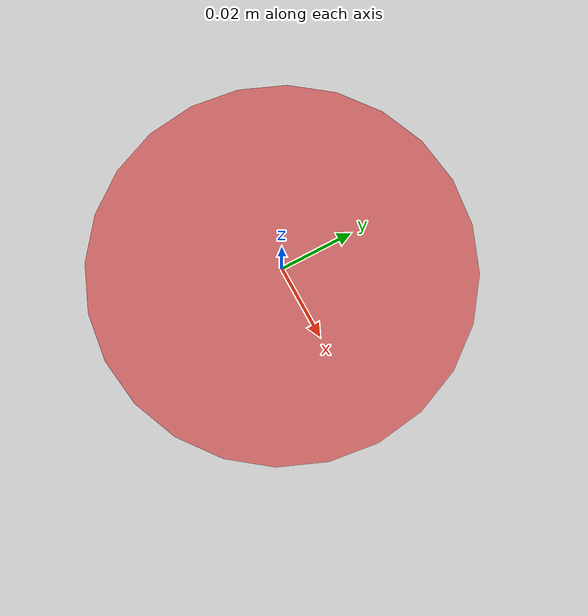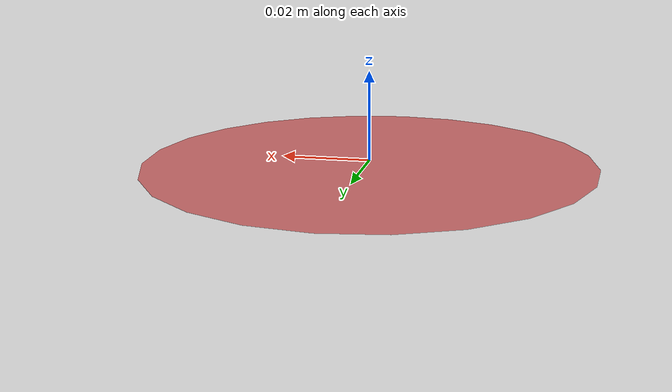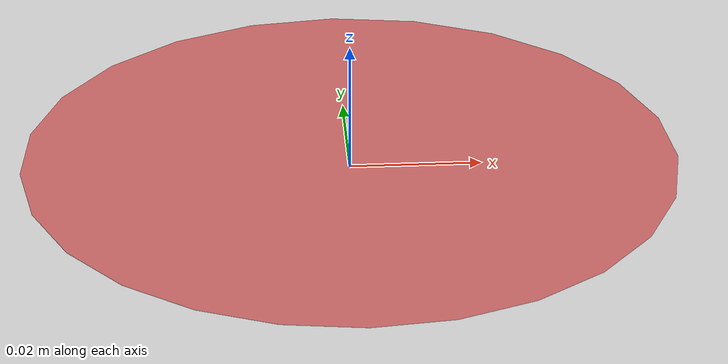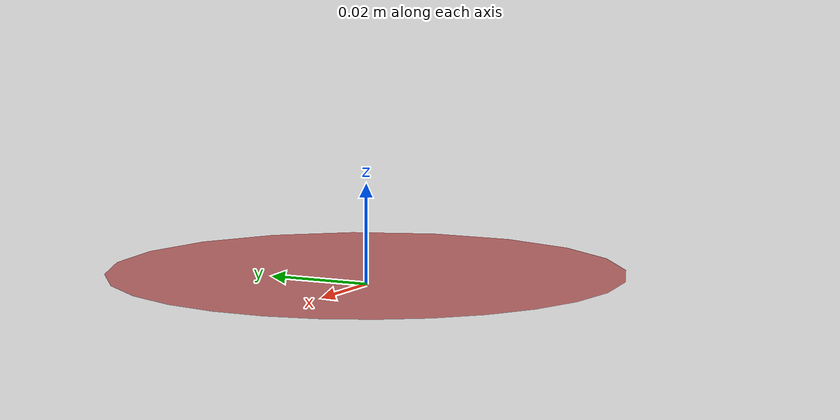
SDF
<?xml version='1.0'?>
<sdf version='1.7'>
  <model name='danger_red_3'>
    <link name='link'>
      <inertial>
        <mass>1</mass>
        <inertia>
          <ixx>0.166667</ixx>
          <ixy>0</ixy>
          <ixz>0</ixz>
          <iyy>0.166667</iyy>
          <iyz>0</iyz>
          <izz>0.166667</izz>
        </inertia>
        <pose>0.6118300924248352 -0.16591669118320995 0.21001721346770952 0.0 -0.0 0.0 </pose>
      </inertial>
      <self_collide>0</self_collide>
      <enable_wind>0</enable_wind>
      <kinematic>0</kinematic>
      <pose>0 0 0 0 -0 0</pose>
      <gravity>1</gravity>
      <visual name='visual'>
        <geometry>
          <cylinder>
            <radius>0.05</radius>
            <length>0.0001</length>
          </cylinder>
        </geometry>
        <material>
          <script>
            <name>Gazebo/Red</name>
            <uri>file://media/materials/scripts/gazebo.material</uri>
          </script>
          <shader type='pixel'>
            <normal_map>__default__</normal_map>
          </shader>
          <ambient>1 0 0 1</ambient>
          <diffuse>1 0 0 1</diffuse>
          <specular>0.1 0.1 0.1 1</specular>
          <emissive>0 0 0 1</emissive>
        </material>
        <pose>0 0 0.0001 0 -0 0</pose>
        <transparency>0.4</transparency>
        <cast_shadows>1</cast_shadows>
      </visual>
    </link>
    <static>1</static>
    <allow_auto_disable>1</allow_auto_disable>
  </model>
</sdf>
